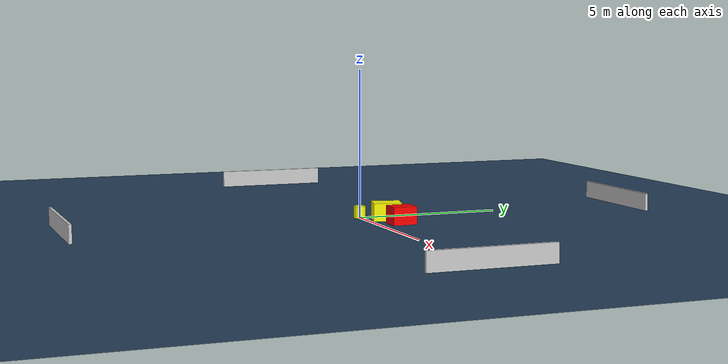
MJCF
<?xml version="1.0" ?>
<mujoco model="generated_environment">
  <option timestep="0.01" integrator="RK4" cone="elliptic"/>
  <default>
    <geom density="1"/>
  </default>
  <asset>
    <texture builtin="gradient" height="3072" name="skybox" rgb1="0.3 0.5 0.7" rgb2="0 0 0" type="skybox" width="512"/>
    <texture builtin="checker" height="300" name="groundplane" rgb1="0.2 0.3 0.4" rgb2="0.1 0.2 0.3" type="2d" width="300"/>
    <material name="groundplane" reflectance="0.2" texrepeat="5 5" texture="groundplane"/>
  </asset>
  <worldbody>
    <light dir="0 0 -1" directional="true" pos="0 0 1.5"/>
    <geom condim="3" friction="0.5 0.005 0.001" material="groundplane" name="floor" pos="0 0 0" size="0 0 0.05" type="plane"/>
    <body name="walls">
      <geom name="wall_1" condim="4" pos="-10.0 0.0 0.3" rgba="0.800000011920929 0.800000011920929 0.800000011920929 1.0" size="0.05 2.0 0.3" type="box"/>
      <geom name="wall_2" condim="4" pos="10.0 0.0 0.3" rgba="0.800000011920929 0.800000011920929 0.800000011920929 1.0" size="0.05 2.0 0.3" type="box"/>
      <geom name="wall_3" condim="4" pos="0.0 -10.0 0.3" rgba="0.800000011920929 0.800000011920929 0.800000011920929 1.0" size="2.0 0.05 0.3" type="box"/>
      <geom name="wall_4" condim="4" pos="0.0 10.0 0.3" rgba="0.800000011920929 0.800000011920929 0.800000011920929 1.0" size="2.0 0.05 0.3" type="box"/>
    </body>
    <body name="robot">
      <joint name="joint_x" type="slide" pos="0 0 0" axis="1 0 0"/>
      <joint name="joint_y" type="slide" pos="0 0 0" axis="0 1 0"/>
      <geom name="robot" type="cylinder" pos="0.0 0.0 0.2" size="0.2 0.2 0.0" mass="5.0" friction="1.0 0.005 0.0001" condim="4" rgba="1.0 1.0 0.0 1.0"/>
    </body>
    <body name="obstacle_1_movable">
      <geom name="obstacle_1_movable" condim="4" pos="0.7810630965768978 0.6669955274700835 0.3" euler="0 0 165.29783790856402" friction="0.0 0.005 0.001" rgba="1.0 1.0 0.0 1.0" size="0.4019534165673365 0.4744958943155703 0.3" type="box" mass="0.1"/>
      <joint type="free"/>
    </body>
    <body name="obstacle_2_static">
      <geom name="obstacle_2_static" condim="4" pos="1.7885962420627626 0.7890267417159298 0.3" euler="0 0 181.13298389698434" friction="0.0 0.005 0.001" rgba="1.0 0.0 0.0 1.0" size="0.31142904104618024 0.41632119546803503 0.3" type="box"/>
    </body>
  </worldbody>
  <actuator>
    <motor name="actuator_x" joint="joint_x" gear="1" ctrlrange="-1 1"/>
    <motor name="actuator_y" joint="joint_y" gear="1" ctrlrange="-1 1"/>
  </actuator>
</mujoco>
